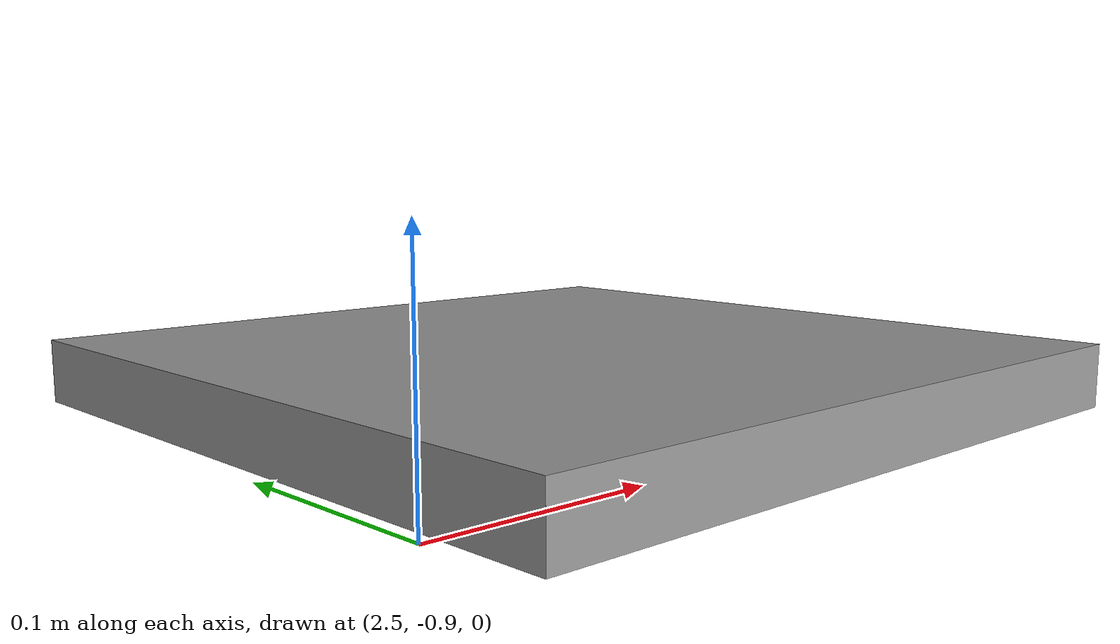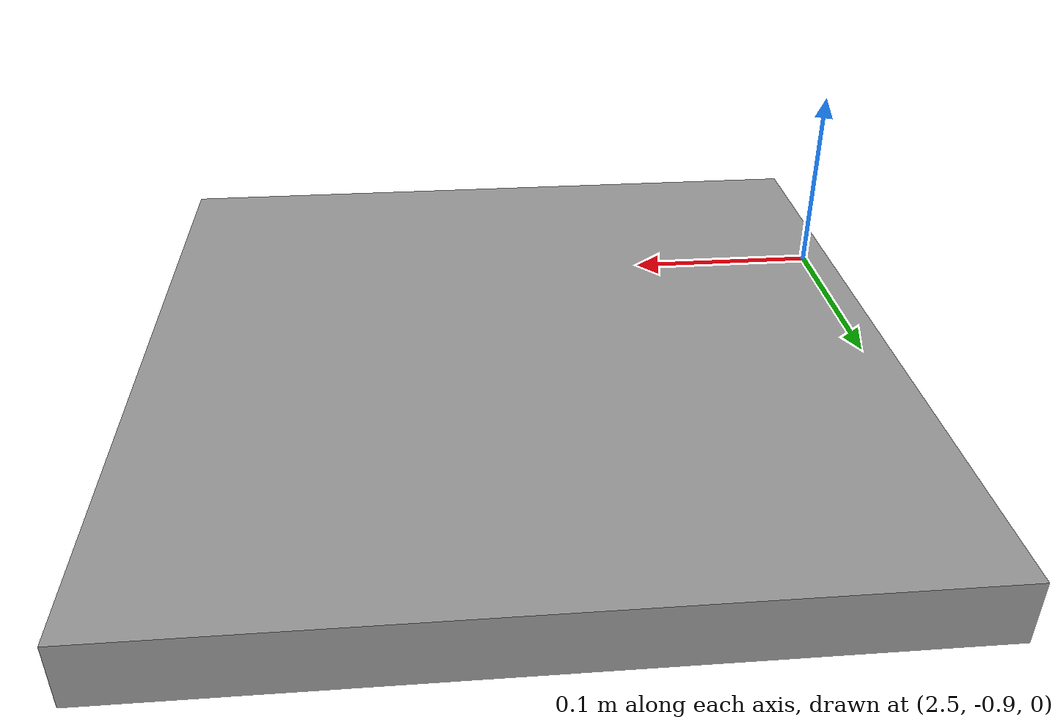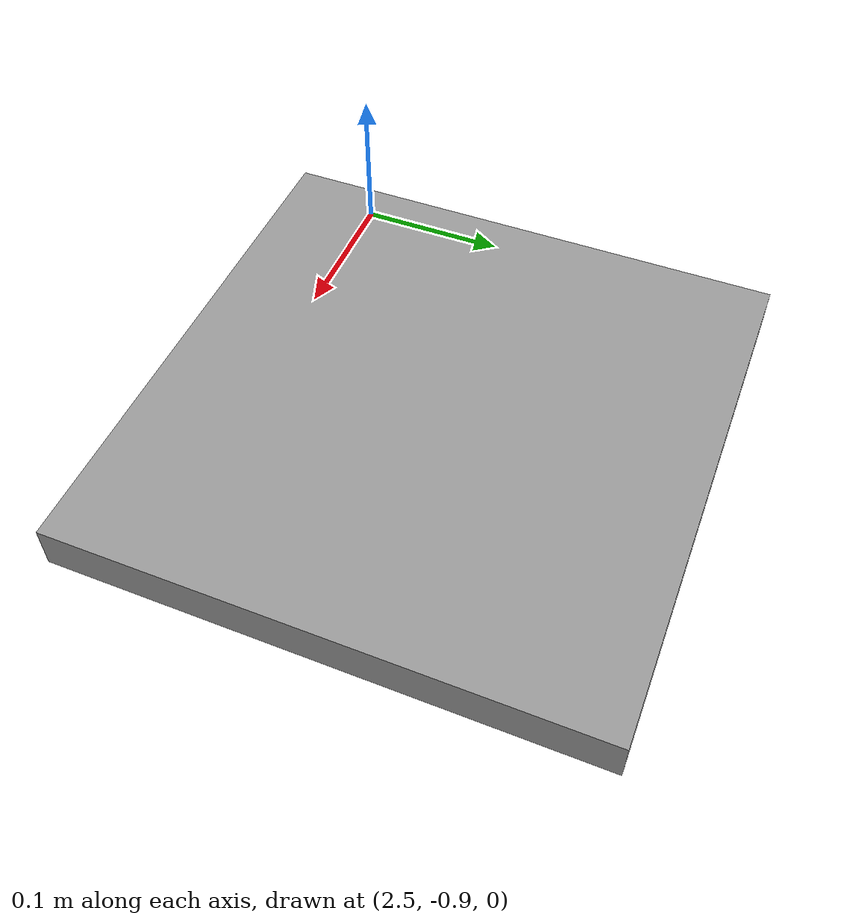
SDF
<?xml version='1.0'?>
<sdf version='1.7'>
  <model name='3cm_obscale'>
    <pose>1.4285 -0.475 0 0 -0 0</pose>
    <link name='Stairs_1'>
      <visual name='Stairs_1_Visual_0'>
        <pose>1.2535 -0.3 0.015 0 -0 0</pose>
        <geometry>
          <box>
            <size>0.35 0.35 0.03</size>
          </box>
        </geometry>
        <material>
          <script>
            <uri>file://media/materials/scripts/gazebo.material</uri>
            <name>Gazebo/Grey</name>
          </script>
          <ambient>1 1 1 1</ambient>
        </material>
        <meta>
          <layer>0</layer>
        </meta>
      </visual>
      <collision name='Stairs_1_Collision_0'>
        <geometry>
          <box>
            <size>0.35 0.35 0.03</size>
          </box>
        </geometry>
        <pose>1.2535 -0.3 0.015 0 -0 0</pose>
      </collision>
    </link>
    <static>1</static>
  </model>
</sdf>
